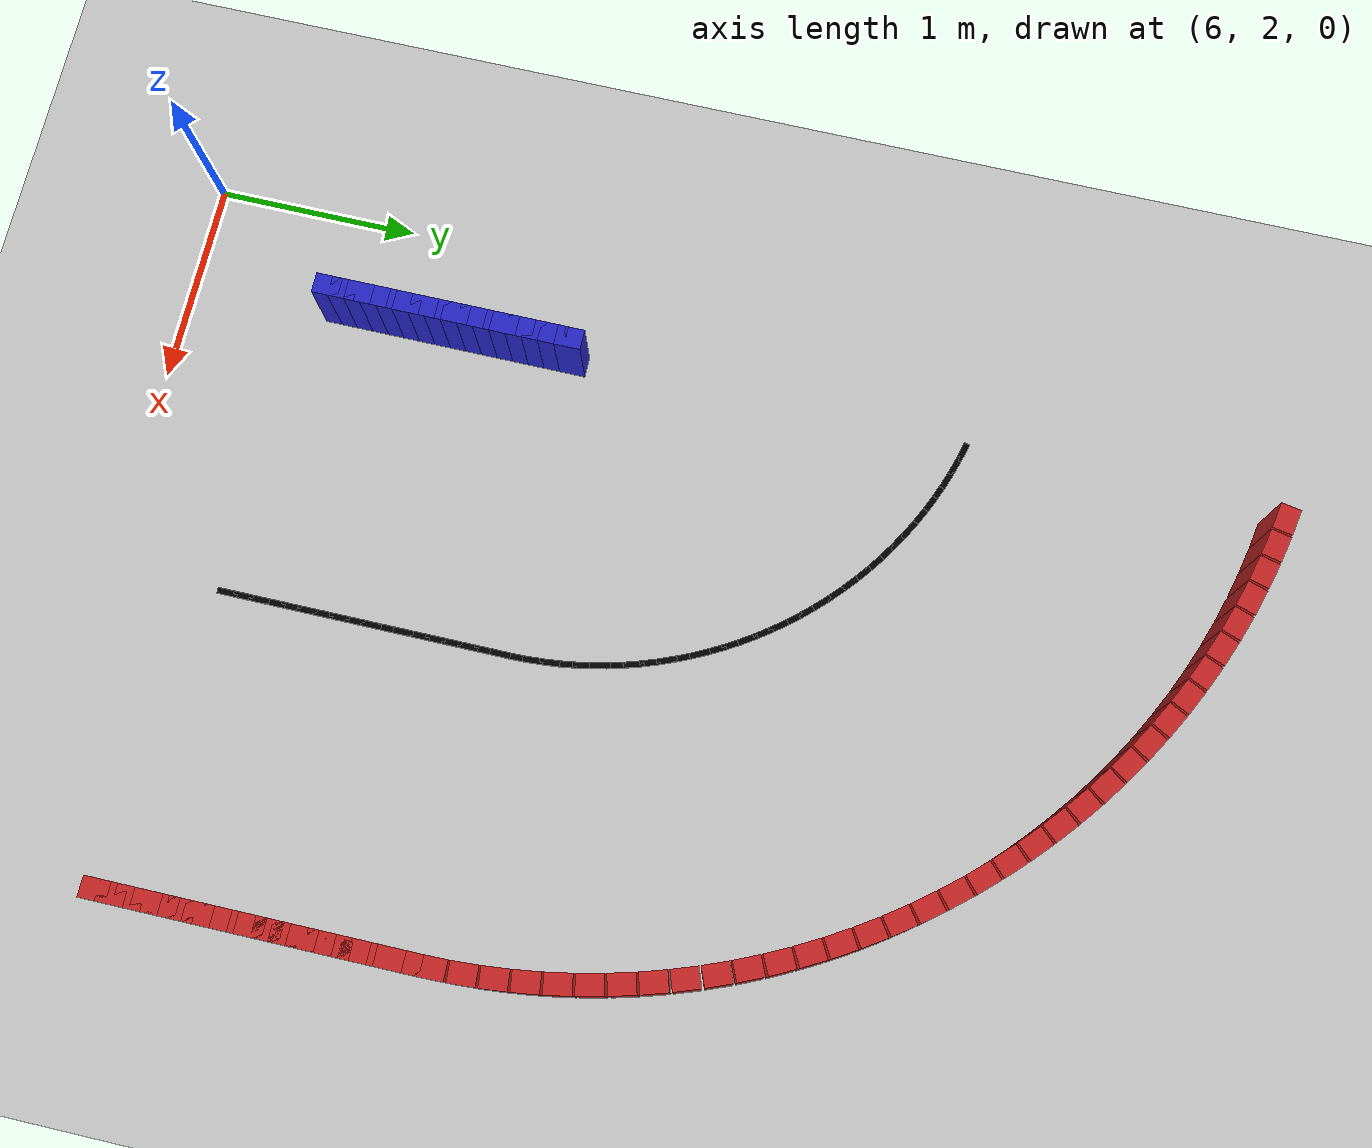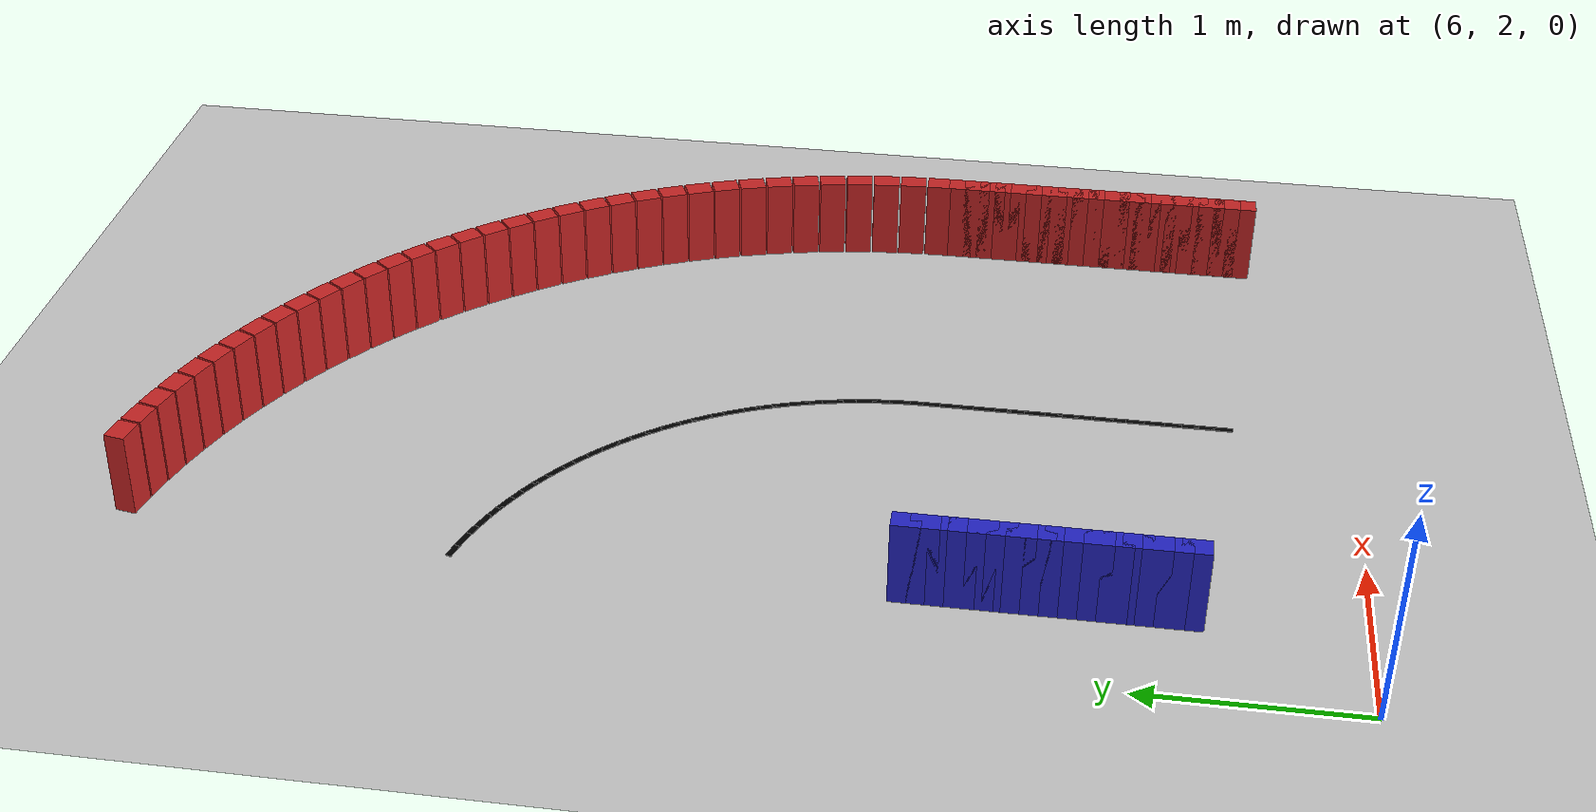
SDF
<sdf version="1.6">
 <world name="new_race_track">
  <include><uri>model://ground_plane</uri></include>
  <include><uri>model://sun</uri></include>
  <model name="iw_480">
   <static>true</static>
   <pose>6.5000 2.7600 0.200 0 0 1.5708</pose>
   <link name="l">
    <collision name="c"><geometry><box><size>0.1300 0.1 0.4</size></box></geometry></collision>
    <visual name="v">
     <geometry><box><size>0.1300 0.1 0.4</size></box></geometry>
     <material><ambient>0.15 0.15 0.8 1</ambient><diffuse>0.15 0.15 0.8 1</diffuse></material>
    </visual>
   </link>
  </model>
  <model name="iw_481">
   <static>true</static>
   <pose>6.5000 2.8400 0.200 0 0 1.5708</pose>
   <link name="l">
    <collision name="c"><geometry><box><size>0.1300 0.1 0.4</size></box></geometry></collision>
    <visual name="v">
     <geometry><box><size>0.1300 0.1 0.4</size></box></geometry>
     <material><ambient>0.15 0.15 0.8 1</ambient><diffuse>0.15 0.15 0.8 1</diffuse></material>
    </visual>
   </link>
  </model>
  <model name="iw_482">
   <static>true</static>
   <pose>6.5000 2.9200 0.200 0 0 1.5708</pose>
   <link name="l">
    <collision name="c"><geometry><box><size>0.1300 0.1 0.4</size></box></geometry></collision>
    <visual name="v">
     <geometry><box><size>0.1300 0.1 0.4</size></box></geometry>
     <material><ambient>0.15 0.15 0.8 1</ambient><diffuse>0.15 0.15 0.8 1</diffuse></material>
    </visual>
   </link>
  </model>
  <model name="iw_483">
   <static>true</static>
   <pose>6.5000 3.0000 0.200 0 0 1.5708</pose>
   <link name="l">
    <collision name="c"><geometry><box><size>0.1300 0.1 0.4</size></box></geometry></collision>
    <visual name="v">
     <geometry><box><size>0.1300 0.1 0.4</size></box></geometry>
     <material><ambient>0.15 0.15 0.8 1</ambient><diffuse>0.15 0.15 0.8 1</diffuse></material>
    </visual>
   </link>
  </model>
  <model name="iw_484">
   <static>true</static>
   <pose>6.5000 3.0800 0.200 0 0 1.5708</pose>
   <link name="l">
    <collision name="c"><geometry><box><size>0.1300 0.1 0.4</size></box></geometry></collision>
    <visual name="v">
     <geometry><box><size>0.1300 0.1 0.4</size></box></geometry>
     <material><ambient>0.15 0.15 0.8 1</ambient><diffuse>0.15 0.15 0.8 1</diffuse></material>
    </visual>
   </link>
  </model>
  <model name="iw_485">
   <static>true</static>
   <pose>6.5000 3.1600 0.200 0 0 1.5708</pose>
   <link name="l">
    <collision name="c"><geometry><box><size>0.1300 0.1 0.4</size></box></geometry></collision>
    <visual name="v">
     <geometry><box><size>0.1300 0.1 0.4</size></box></geometry>
     <material><ambient>0.15 0.15 0.8 1</ambient><diffuse>0.15 0.15 0.8 1</diffuse></material>
    </visual>
   </link>
  </model>
  <model name="iw_486">
   <static>true</static>
   <pose>6.5000 3.2400 0.200 0 0 1.5708</pose>
   <link name="l">
    <collision name="c"><geometry><box><size>0.1300 0.1 0.4</size></box></geometry></collision>
    <visual name="v">
     <geometry><box><size>0.1300 0.1 0.4</size></box></geometry>
     <material><ambient>0.15 0.15 0.8 1</ambient><diffuse>0.15 0.15 0.8 1</diffuse></material>
    </visual>
   </link>
  </model>
  <model name="iw_487">
   <static>true</static>
   <pose>6.5000 3.3200 0.200 0 0 1.5708</pose>
   <link name="l">
    <collision name="c"><geometry><box><size>0.1300 0.1 0.4</size></box></geometry></collision>
    <visual name="v">
     <geometry><box><size>0.1300 0.1 0.4</size></box></geometry>
     <material><ambient>0.15 0.15 0.8 1</ambient><diffuse>0.15 0.15 0.8 1</diffuse></material>
    </visual>
   </link>
  </model>
  <model name="iw_488">
   <static>true</static>
   <pose>6.5000 3.4000 0.200 0 0 1.5708</pose>
   <link name="l">
    <collision name="c"><geometry><box><size>0.1300 0.1 0.4</size></box></geometry></collision>
    <visual name="v">
     <geometry><box><size>0.1300 0.1 0.4</size></box></geometry>
     <material><ambient>0.15 0.15 0.8 1</ambient><diffuse>0.15 0.15 0.8 1</diffuse></material>
    </visual>
   </link>
  </model>
  <model name="iw_489">
   <static>true</static>
   <pose>6.5000 3.4800 0.200 0 0 1.5708</pose>
   <link name="l">
    <collision name="c"><geometry><box><size>0.1300 0.1 0.4</size></box></geometry></collision>
    <visual name="v">
     <geometry><box><size>0.1300 0.1 0.4</size></box></geometry>
     <material><ambient>0.15 0.15 0.8 1</ambient><diffuse>0.15 0.15 0.8 1</diffuse></material>
    </visual>
   </link>
  </model>
  <model name="iw_490">
   <static>true</static>
   <pose>6.5000 3.5600 0.200 0 0 1.5708</pose>
   <link name="l">
    <collision name="c"><geometry><box><size>0.1300 0.1 0.4</size></box></geometry></collision>
    <visual name="v">
     <geometry><box><size>0.1300 0.1 0.4</size></box></geometry>
     <material><ambient>0.15 0.15 0.8 1</ambient><diffuse>0.15 0.15 0.8 1</diffuse></material>
    </visual>
   </link>
  </model>
  <model name="iw_491">
   <static>true</static>
   <pose>6.5000 3.6400 0.200 0 0 1.5708</pose>
   <link name="l">
    <collision name="c"><geometry><box><size>0.1300 0.1 0.4</size></box></geometry></collision>
    <visual name="v">
     <geometry><box><size>0.1300 0.1 0.4</size></box></geometry>
     <material><ambient>0.15 0.15 0.8 1</ambient><diffuse>0.15 0.15 0.8 1</diffuse></material>
    </visual>
   </link>
  </model>
  <model name="iw_492">
   <static>true</static>
   <pose>6.5000 3.7200 0.200 0 0 1.5708</pose>
   <link name="l">
    <collision name="c"><geometry><box><size>0.1300 0.1 0.4</size></box></geometry></collision>
    <visual name="v">
     <geometry><box><size>0.1300 0.1 0.4</size></box></geometry>
     <material><ambient>0.15 0.15 0.8 1</ambient><diffuse>0.15 0.15 0.8 1</diffuse></material>
    </visual>
   </link>
  </model>
  <model name="iw_493">
   <static>true</static>
   <pose>6.5000 3.8000 0.200 0 0 1.5708</pose>
   <link name="l">
    <collision name="c"><geometry><box><size>0.1300 0.1 0.4</size></box></geometry></collision>
    <visual name="v">
     <geometry><box><size>0.1300 0.1 0.4</size></box></geometry>
     <material><ambient>0.15 0.15 0.8 1</ambient><diffuse>0.15 0.15 0.8 1</diffuse></material>
    </visual>
   </link>
  </model>
  <model name="iw_494">
   <static>true</static>
   <pose>6.5000 3.8800 0.200 0 0 1.5708</pose>
   <link name="l">
    <collision name="c"><geometry><box><size>0.1300 0.1 0.4</size></box></geometry></collision>
    <visual name="v">
     <geometry><box><size>0.1300 0.1 0.4</size></box></geometry>
     <material><ambient>0.15 0.15 0.8 1</ambient><diffuse>0.15 0.15 0.8 1</diffuse></material>
    </visual>
   </link>
  </model>
  <model name="iw_495">
   <static>true</static>
   <pose>6.5000 3.9600 0.200 0 0 1.5708</pose>
   <link name="l">
    <collision name="c"><geometry><box><size>0.1300 0.1 0.4</size></box></geometry></collision>
    <visual name="v">
     <geometry><box><size>0.1300 0.1 0.4</size></box></geometry>
     <material><ambient>0.15 0.15 0.8 1</ambient><diffuse>0.15 0.15 0.8 1</diffuse></material>
    </visual>
   </link>
  </model>
  <model name="ow_477">
   <static>true</static>
   <pose>9.5000 2.5200 0.200 0 0 1.5708</pose>
   <link name="l">
    <collision name="c"><geometry><box><size>0.1300 0.1 0.4</size></box></geometry></collision>
    <visual name="v">
     <geometry><box><size>0.1300 0.1 0.4</size></box></geometry>
     <material><ambient>0.8 0.15 0.15 1</ambient><diffuse>0.8 0.15 0.15 1</diffuse></material>
    </visual>
   </link>
  </model>
  <model name="ow_478">
   <static>true</static>
   <pose>9.5000 2.6000 0.200 0 0 1.5708</pose>
   <link name="l">
    <collision name="c"><geometry><box><size>0.1300 0.1 0.4</size></box></geometry></collision>
    <visual name="v">
     <geometry><box><size>0.1300 0.1 0.4</size></box></geometry>
     <material><ambient>0.8 0.15 0.15 1</ambient><diffuse>0.8 0.15 0.15 1</diffuse></material>
    </visual>
   </link>
  </model>
  <model name="ow_479">
   <static>true</static>
   <pose>9.5000 2.6800 0.200 0 0 1.5708</pose>
   <link name="l">
    <collision name="c"><geometry><box><size>0.1300 0.1 0.4</size></box></geometry></collision>
    <visual name="v">
     <geometry><box><size>0.1300 0.1 0.4</size></box></geometry>
     <material><ambient>0.8 0.15 0.15 1</ambient><diffuse>0.8 0.15 0.15 1</diffuse></material>
    </visual>
   </link>
  </model>
  <model name="ow_480">
   <static>true</static>
   <pose>9.5000 2.7600 0.200 0 0 1.5708</pose>
   <link name="l">
    <collision name="c"><geometry><box><size>0.1300 0.1 0.4</size></box></geometry></collision>
    <visual name="v">
     <geometry><box><size>0.1300 0.1 0.4</size></box></geometry>
     <material><ambient>0.8 0.15 0.15 1</ambient><diffuse>0.8 0.15 0.15 1</diffuse></material>
    </visual>
   </link>
  </model>
  <model name="ow_481">
   <static>true</static>
   <pose>9.5000 2.8400 0.200 0 0 1.5708</pose>
   <link name="l">
    <collision name="c"><geometry><box><size>0.1300 0.1 0.4</size></box></geometry></collision>
    <visual name="v">
     <geometry><box><size>0.1300 0.1 0.4</size></box></geometry>
     <material><ambient>0.8 0.15 0.15 1</ambient><diffuse>0.8 0.15 0.15 1</diffuse></material>
    </visual>
   </link>
  </model>
  <model name="ow_482">
   <static>true</static>
   <pose>9.5000 2.9200 0.200 0 0 1.5708</pose>
   <link name="l">
    <collision name="c"><geometry><box><size>0.1300 0.1 0.4</size></box></geometry></collision>
    <visual name="v">
     <geometry><box><size>0.1300 0.1 0.4</size></box></geometry>
     <material><ambient>0.8 0.15 0.15 1</ambient><diffuse>0.8 0.15 0.15 1</diffuse></material>
    </visual>
   </link>
  </model>
  <model name="ow_483">
   <static>true</static>
   <pose>9.5000 3.0000 0.200 0 0 1.5708</pose>
   <link name="l">
    <collision name="c"><geometry><box><size>0.1300 0.1 0.4</size></box></geometry></collision>
    <visual name="v">
     <geometry><box><size>0.1300 0.1 0.4</size></box></geometry>
     <material><ambient>0.8 0.15 0.15 1</ambient><diffuse>0.8 0.15 0.15 1</diffuse></material>
    </visual>
   </link>
  </model>
  <model name="ow_484">
   <static>true</static>
   <pose>9.5000 3.0800 0.200 0 0 1.5708</pose>
   <link name="l">
    <collision name="c"><geometry><box><size>0.1300 0.1 0.4</size></box></geometry></collision>
    <visual name="v">
     <geometry><box><size>0.1300 0.1 0.4</size></box></geometry>
     <material><ambient>0.8 0.15 0.15 1</ambient><diffuse>0.8 0.15 0.15 1</diffuse></material>
    </visual>
   </link>
  </model>
  <model name="ow_485">
   <static>true</static>
   <pose>9.5000 3.1600 0.200 0 0 1.5708</pose>
   <link name="l">
    <collision name="c"><geometry><box><size>0.1300 0.1 0.4</size></box></geometry></collision>
    <visual name="v">
     <geometry><box><size>0.1300 0.1 0.4</size></box></geometry>
     <material><ambient>0.8 0.15 0.15 1</ambient><diffuse>0.8 0.15 0.15 1</diffuse></material>
    </visual>
   </link>
  </model>
  <model name="ow_486">
   <static>true</static>
   <pose>9.5000 3.2400 0.200 0 0 1.5708</pose>
   <link name="l">
    <collision name="c"><geometry><box><size>0.1300 0.1 0.4</size></box></geometry></collision>
    <visual name="v">
     <geometry><box><size>0.1300 0.1 0.4</size></box></geometry>
     <material><ambient>0.8 0.15 0.15 1</ambient><diffuse>0.8 0.15 0.15 1</diffuse></material>
    </visual>
   </link>
  </model>
  <model name="ow_487">
   <static>true</static>
   <pose>9.5000 3.3200 0.200 0 0 1.5708</pose>
   <link name="l">
    <collision name="c"><geometry><box><size>0.1300 0.1 0.4</size></box></geometry></collision>
    <visual name="v">
     <geometry><box><size>0.1300 0.1 0.4</size></box></geometry>
     <material><ambient>0.8 0.15 0.15 1</ambient><diffuse>0.8 0.15 0.15 1</diffuse></material>
    </visual>
   </link>
  </model>
  <model name="ow_488">
   <static>true</static>
   <pose>9.5000 3.4000 0.200 0 0 1.5708</pose>
   <link name="l">
    <collision name="c"><geometry><box><size>0.1300 0.1 0.4</size></box></geometry></collision>
    <visual name="v">
     <geometry><box><size>0.1300 0.1 0.4</size></box></geometry>
     <material><ambient>0.8 0.15 0.15 1</ambient><diffuse>0.8 0.15 0.15 1</diffuse></material>
    </visual>
   </link>
  </model>
  <model name="ow_489">
   <static>true</static>
   <pose>9.5000 3.4800 0.200 0 0 1.5708</pose>
   <link name="l">
    <collision name="c"><geometry><box><size>0.1300 0.1 0.4</size></box></geometry></collision>
    <visual name="v">
     <geometry><box><size>0.1300 0.1 0.4</size></box></geometry>
     <material><ambient>0.8 0.15 0.15 1</ambient><diffuse>0.8 0.15 0.15 1</diffuse></material>
    </visual>
   </link>
  </model>
  <model name="ow_490">
   <static>true</static>
   <pose>9.5000 3.5600 0.200 0 0 1.5708</pose>
   <link name="l">
    <collision name="c"><geometry><box><size>0.1300 0.1 0.4</size></box></geometry></collision>
    <visual name="v">
     <geometry><box><size>0.1300 0.1 0.4</size></box></geometry>
     <material><ambient>0.8 0.15 0.15 1</ambient><diffuse>0.8 0.15 0.15 1</diffuse></material>
    </visual>
   </link>
  </model>
  <model name="ow_491">
   <static>true</static>
   <pose>9.5000 3.6400 0.200 0 0 1.5708</pose>
   <link name="l">
    <collision name="c"><geometry><box><size>0.1300 0.1 0.4</size></box></geometry></collision>
    <visual name="v">
     <geometry><box><size>0.1300 0.1 0.4</size></box></geometry>
     <material><ambient>0.8 0.15 0.15 1</ambient><diffuse>0.8 0.15 0.15 1</diffuse></material>
    </visual>
   </link>
  </model>
  <model name="ow_492">
   <static>true</static>
   <pose>9.5000 3.7200 0.200 0 0 1.5708</pose>
   <link name="l">
    <collision name="c"><geometry><box><size>0.1300 0.1 0.4</size></box></geometry></collision>
    <visual name="v">
     <geometry><box><size>0.1300 0.1 0.4</size></box></geometry>
     <material><ambient>0.8 0.15 0.15 1</ambient><diffuse>0.8 0.15 0.15 1</diffuse></material>
    </visual>
   </link>
  </model>
  <model name="ow_493">
   <static>true</static>
   <pose>9.5000 3.8000 0.200 0 0 1.5708</pose>
   <link name="l">
    <collision name="c"><geometry><box><size>0.1300 0.1 0.4</size></box></geometry></collision>
    <visual name="v">
     <geometry><box><size>0.1300 0.1 0.4</size></box></geometry>
     <material><ambient>0.8 0.15 0.15 1</ambient><diffuse>0.8 0.15 0.15 1</diffuse></material>
    </visual>
   </link>
  </model>
  <model name="ow_494">
   <static>true</static>
   <pose>9.5000 3.8800 0.200 0 0 1.5708</pose>
   <link name="l">
    <collision name="c"><geometry><box><size>0.1300 0.1 0.4</size></box></geometry></collision>
    <visual name="v">
     <geometry><box><size>0.1300 0.1 0.4</size></box></geometry>
     <material><ambient>0.8 0.15 0.15 1</ambient><diffuse>0.8 0.15 0.15 1</diffuse></material>
    </visual>
   </link>
  </model>
  <model name="ow_495">
   <static>true</static>
   <pose>9.5000 3.9600 0.200 0 0 1.5708</pose>
   <link name="l">
    <collision name="c"><geometry><box><size>0.1300 0.1 0.4</size></box></geometry></collision>
    <visual name="v">
     <geometry><box><size>0.1300 0.1 0.4</size></box></geometry>
     <material><ambient>0.8 0.15 0.15 1</ambient><diffuse>0.8 0.15 0.15 1</diffuse></material>
    </visual>
   </link>
  </model>
  <model name="ow_496">
   <static>true</static>
   <pose>9.4989 4.0705 0.200 0 0 1.5909</pose>
   <link name="l">
    <collision name="c"><geometry><box><size>0.1305 0.1 0.4</size></box></geometry></collision>
    <visual name="v">
     <geometry><box><size>0.1305 0.1 0.4</size></box></geometry>
     <material><ambient>0.8 0.15 0.15 1</ambient><diffuse>0.8 0.15 0.15 1</diffuse></material>
    </visual>
   </link>
  </model>
  <model name="ow_497">
   <static>true</static>
   <pose>9.4932 4.2113 0.200 0 0 1.6312</pose>
   <link name="l">
    <collision name="c"><geometry><box><size>0.1305 0.1 0.4</size></box></geometry></collision>
    <visual name="v">
     <geometry><box><size>0.1305 0.1 0.4</size></box></geometry>
     <material><ambient>0.8 0.15 0.15 1</ambient><diffuse>0.8 0.15 0.15 1</diffuse></material>
    </visual>
   </link>
  </model>
  <model name="ow_498">
   <static>true</static>
   <pose>9.4819 4.3518 0.200 0 0 1.6715</pose>
   <link name="l">
    <collision name="c"><geometry><box><size>0.1305 0.1 0.4</size></box></geometry></collision>
    <visual name="v">
     <geometry><box><size>0.1305 0.1 0.4</size></box></geometry>
     <material><ambient>0.8 0.15 0.15 1</ambient><diffuse>0.8 0.15 0.15 1</diffuse></material>
    </visual>
   </link>
  </model>
  <model name="ow_499">
   <static>true</static>
   <pose>9.4649 4.4917 0.200 0 0 1.7118</pose>
   <link name="l">
    <collision name="c"><geometry><box><size>0.1305 0.1 0.4</size></box></geometry></collision>
    <visual name="v">
     <geometry><box><size>0.1305 0.1 0.4</size></box></geometry>
     <material><ambient>0.8 0.15 0.15 1</ambient><diffuse>0.8 0.15 0.15 1</diffuse></material>
    </visual>
   </link>
  </model>
  <model name="ow_500">
   <static>true</static>
   <pose>9.4423 4.6308 0.200 0 0 1.7520</pose>
   <link name="l">
    <collision name="c"><geometry><box><size>0.1305 0.1 0.4</size></box></geometry></collision>
    <visual name="v">
     <geometry><box><size>0.1305 0.1 0.4</size></box></geometry>
     <material><ambient>0.8 0.15 0.15 1</ambient><diffuse>0.8 0.15 0.15 1</diffuse></material>
    </visual>
   </link>
  </model>
  <model name="ow_501">
   <static>true</static>
   <pose>9.4141 4.7689 0.200 0 0 1.7923</pose>
   <link name="l">
    <collision name="c"><geometry><box><size>0.1305 0.1 0.4</size></box></geometry></collision>
    <visual name="v">
     <geometry><box><size>0.1305 0.1 0.4</size></box></geometry>
     <material><ambient>0.8 0.15 0.15 1</ambient><diffuse>0.8 0.15 0.15 1</diffuse></material>
    </visual>
   </link>
  </model>
  <model name="ow_502">
   <static>true</static>
   <pose>9.3803 4.9058 0.200 0 0 1.8326</pose>
   <link name="l">
    <collision name="c"><geometry><box><size>0.1305 0.1 0.4</size></box></geometry></collision>
    <visual name="v">
     <geometry><box><size>0.1305 0.1 0.4</size></box></geometry>
     <material><ambient>0.8 0.15 0.15 1</ambient><diffuse>0.8 0.15 0.15 1</diffuse></material>
    </visual>
   </link>
  </model>
  <model name="ow_503">
   <static>true</static>
   <pose>9.3411 5.0411 0.200 0 0 1.8729</pose>
   <link name="l">
    <collision name="c"><geometry><box><size>0.1305 0.1 0.4</size></box></geometry></collision>
    <visual name="v">
     <geometry><box><size>0.1305 0.1 0.4</size></box></geometry>
     <material><ambient>0.8 0.15 0.15 1</ambient><diffuse>0.8 0.15 0.15 1</diffuse></material>
    </visual>
   </link>
  </model>
  <model name="ow_504">
   <static>true</static>
   <pose>9.2965 5.1748 0.200 0 0 1.9131</pose>
   <link name="l">
    <collision name="c"><geometry><box><size>0.1305 0.1 0.4</size></box></geometry></collision>
    <visual name="v">
     <geometry><box><size>0.1305 0.1 0.4</size></box></geometry>
     <material><ambient>0.8 0.15 0.15 1</ambient><diffuse>0.8 0.15 0.15 1</diffuse></material>
    </visual>
   </link>
  </model>
  <model name="ow_505">
   <static>true</static>
   <pose>9.2465 5.3066 0.200 0 0 1.9534</pose>
   <link name="l">
    <collision name="c"><geometry><box><size>0.1305 0.1 0.4</size></box></geometry></collision>
    <visual name="v">
     <geometry><box><size>0.1305 0.1 0.4</size></box></geometry>
     <material><ambient>0.8 0.15 0.15 1</ambient><diffuse>0.8 0.15 0.15 1</diffuse></material>
    </visual>
   </link>
  </model>
  <model name="ow_506">
   <static>true</static>
   <pose>9.1913 5.4363 0.200 0 0 1.9937</pose>
   <link name="l">
    <collision name="c"><geometry><box><size>0.1305 0.1 0.4</size></box></geometry></collision>
    <visual name="v">
     <geometry><box><size>0.1305 0.1 0.4</size></box></geometry>
     <material><ambient>0.8 0.15 0.15 1</ambient><diffuse>0.8 0.15 0.15 1</diffuse></material>
    </visual>
   </link>
  </model>
  <model name="ow_507">
   <static>true</static>
   <pose>9.1309 5.5636 0.200 0 0 2.0340</pose>
   <link name="l">
    <collision name="c"><geometry><box><size>0.1305 0.1 0.4</size></box></geometry></collision>
    <visual name="v">
     <geometry><box><size>0.1305 0.1 0.4</size></box></geometry>
     <material><ambient>0.8 0.15 0.15 1</ambient><diffuse>0.8 0.15 0.15 1</diffuse></material>
    </visual>
   </link>
  </model>
  <model name="ow_508">
   <static>true</static>
   <pose>9.0654 5.6884 0.200 0 0 2.0743</pose>
   <link name="l">
    <collision name="c"><geometry><box><size>0.1305 0.1 0.4</size></box></geometry></collision>
    <visual name="v">
     <geometry><box><size>0.1305 0.1 0.4</size></box></geometry>
     <material><ambient>0.8 0.15 0.15 1</ambient><diffuse>0.8 0.15 0.15 1</diffuse></material>
    </visual>
   </link>
  </model>
  <model name="ow_509">
   <static>true</static>
   <pose>8.9949 5.8105 0.200 0 0 2.1145</pose>
   <link name="l">
    <collision name="c"><geometry><box><size>0.1305 0.1 0.4</size></box></geometry></collision>
    <visual name="v">
     <geometry><box><size>0.1305 0.1 0.4</size></box></geometry>
     <material><ambient>0.8 0.15 0.15 1</ambient><diffuse>0.8 0.15 0.15 1</diffuse></material>
    </visual>
   </link>
  </model>
  <model name="ow_510">
   <static>true</static>
   <pose>8.9196 5.9296 0.200 0 0 2.1548</pose>
   <link name="l">
    <collision name="c"><geometry><box><size>0.1305 0.1 0.4</size></box></geometry></collision>
    <visual name="v">
     <geometry><box><size>0.1305 0.1 0.4</size></box></geometry>
     <material><ambient>0.8 0.15 0.15 1</ambient><diffuse>0.8 0.15 0.15 1</diffuse></material>
    </visual>
   </link>
  </model>
  <model name="ow_511">
   <static>true</static>
   <pose>8.8395 6.0456 0.200 0 0 2.1951</pose>
   <link name="l">
    <collision name="c"><geometry><box><size>0.1305 0.1 0.4</size></box></geometry></collision>
    <visual name="v">
     <geometry><box><size>0.1305 0.1 0.4</size></box></geometry>
     <material><ambient>0.8 0.15 0.15 1</ambient><diffuse>0.8 0.15 0.15 1</diffuse></material>
    </visual>
   </link>
  </model>
  <model name="ow_512">
   <static>true</static>
   <pose>8.7548 6.1583 0.200 0 0 2.2354</pose>
   <link name="l">
    <collision name="c"><geometry><box><size>0.1305 0.1 0.4</size></box></geometry></collision>
    <visual name="v">
     <geometry><box><size>0.1305 0.1 0.4</size></box></geometry>
     <material><ambient>0.8 0.15 0.15 1</ambient><diffuse>0.8 0.15 0.15 1</diffuse></material>
    </visual>
   </link>
  </model>
  <model name="ow_513">
   <static>true</static>
   <pose>8.6657 6.2674 0.200 0 0 2.2756</pose>
   <link name="l">
    <collision name="c"><geometry><box><size>0.1305 0.1 0.4</size></box></geometry></collision>
    <visual name="v">
     <geometry><box><size>0.1305 0.1 0.4</size></box></geometry>
     <material><ambient>0.8 0.15 0.15 1</ambient><diffuse>0.8 0.15 0.15 1</diffuse></material>
    </visual>
   </link>
  </model>
  <model name="ow_514">
   <static>true</static>
   <pose>8.5722 6.3729 0.200 0 0 2.3159</pose>
   <link name="l">
    <collision name="c"><geometry><box><size>0.1305 0.1 0.4</size></box></geometry></collision>
    <visual name="v">
     <geometry><box><size>0.1305 0.1 0.4</size></box></geometry>
     <material><ambient>0.8 0.15 0.15 1</ambient><diffuse>0.8 0.15 0.15 1</diffuse></material>
    </visual>
   </link>
  </model>
  <model name="ow_515">
   <static>true</static>
   <pose>8.4746 6.4746 0.200 0 0 2.3562</pose>
   <link name="l">
    <collision name="c"><geometry><box><size>0.1305 0.1 0.4</size></box></geometry></collision>
    <visual name="v">
     <geometry><box><size>0.1305 0.1 0.4</size></box></geometry>
     <material><ambient>0.8 0.15 0.15 1</ambient><diffuse>0.8 0.15 0.15 1</diffuse></material>
    </visual>
   </link>
  </model>
  <model name="ow_516">
   <static>true</static>
   <pose>8.3729 6.5722 0.200 0 0 2.3965</pose>
   <link name="l">
    <collision name="c"><geometry><box><size>0.1305 0.1 0.4</size></box></geometry></collision>
    <visual name="v">
     <geometry><box><size>0.1305 0.1 0.4</size></box></geometry>
     <material><ambient>0.8 0.15 0.15 1</ambient><diffuse>0.8 0.15 0.15 1</diffuse></material>
    </visual>
   </link>
  </model>
  <model name="ow_517">
   <static>true</static>
   <pose>8.2674 6.6657 0.200 0 0 2.4367</pose>
   <link name="l">
    <collision name="c"><geometry><box><size>0.1305 0.1 0.4</size></box></geometry></collision>
    <visual name="v">
     <geometry><box><size>0.1305 0.1 0.4</size></box></geometry>
     <material><ambient>0.8 0.15 0.15 1</ambient><diffuse>0.8 0.15 0.15 1</diffuse></material>
    </visual>
   </link>
  </model>
  <model name="ow_518">
   <static>true</static>
   <pose>8.1583 6.7548 0.200 0 0 2.4770</pose>
   <link name="l">
    <collision name="c"><geometry><box><size>0.1305 0.1 0.4</size></box></geometry></collision>
    <visual name="v">
     <geometry><box><size>0.1305 0.1 0.4</size></box></geometry>
     <material><ambient>0.8 0.15 0.15 1</ambient><diffuse>0.8 0.15 0.15 1</diffuse></material>
    </visual>
   </link>
  </model>
  <model name="ow_519">
   <static>true</static>
   <pose>8.0456 6.8395 0.200 0 0 2.5173</pose>
   <link name="l">
    <collision name="c"><geometry><box><size>0.1305 0.1 0.4</size></box></geometry></collision>
    <visual name="v">
     <geometry><box><size>0.1305 0.1 0.4</size></box></geometry>
     <material><ambient>0.8 0.15 0.15 1</ambient><diffuse>0.8 0.15 0.15 1</diffuse></material>
    </visual>
   </link>
  </model>
  <model name="ow_520">
   <static>true</static>
   <pose>7.9296 6.9196 0.200 0 0 2.5576</pose>
   <link name="l">
    <collision name="c"><geometry><box><size>0.1305 0.1 0.4</size></box></geometry></collision>
    <visual name="v">
     <geometry><box><size>0.1305 0.1 0.4</size></box></geometry>
     <material><ambient>0.8 0.15 0.15 1</ambient><diffuse>0.8 0.15 0.15 1</diffuse></material>
    </visual>
   </link>
  </model>
  <model name="ow_521">
   <static>true</static>
   <pose>7.8105 6.9949 0.200 0 0 2.5979</pose>
   <link name="l">
    <collision name="c"><geometry><box><size>0.1305 0.1 0.4</size></box></geometry></collision>
    <visual name="v">
     <geometry><box><size>0.1305 0.1 0.4</size></box></geometry>
     <material><ambient>0.8 0.15 0.15 1</ambient><diffuse>0.8 0.15 0.15 1</diffuse></material>
    </visual>
   </link>
  </model>
  <model name="ow_522">
   <static>true</static>
   <pose>7.6884 7.0654 0.200 0 0 2.6381</pose>
   <link name="l">
    <collision name="c"><geometry><box><size>0.1305 0.1 0.4</size></box></geometry></collision>
    <visual name="v">
     <geometry><box><size>0.1305 0.1 0.4</size></box></geometry>
     <material><ambient>0.8 0.15 0.15 1</ambient><diffuse>0.8 0.15 0.15 1</diffuse></material>
    </visual>
   </link>
  </model>
  <model name="ow_523">
   <static>true</static>
   <pose>7.5636 7.1309 0.200 0 0 2.6784</pose>
   <link name="l">
    <collision name="c"><geometry><box><size>0.1305 0.1 0.4</size></box></geometry></collision>
    <visual name="v">
     <geometry><box><size>0.1305 0.1 0.4</size></box></geometry>
     <material><ambient>0.8 0.15 0.15 1</ambient><diffuse>0.8 0.15 0.15 1</diffuse></material>
    </visual>
   </link>
  </model>
  <model name="ow_524">
   <static>true</static>
   <pose>7.4363 7.1913 0.200 0 0 2.7187</pose>
   <link name="l">
    <collision name="c"><geometry><box><size>0.1305 0.1 0.4</size></box></geometry></collision>
    <visual name="v">
     <geometry><box><size>0.1305 0.1 0.4</size></box></geometry>
     <material><ambient>0.8 0.15 0.15 1</ambient><diffuse>0.8 0.15 0.15 1</diffuse></material>
    </visual>
   </link>
  </model>
  <model name="ow_525">
   <static>true</static>
   <pose>7.3066 7.2465 0.200 0 0 2.7590</pose>
   <link name="l">
    <collision name="c"><geometry><box><size>0.1305 0.1 0.4</size></box></geometry></collision>
    <visual name="v">
     <geometry><box><size>0.1305 0.1 0.4</size></box></geometry>
     <material><ambient>0.8 0.15 0.15 1</ambient><diffuse>0.8 0.15 0.15 1</diffuse></material>
    </visual>
   </link>
  </model>
  <model name="ow_526">
   <static>true</static>
   <pose>7.1748 7.2965 0.200 0 0 2.7992</pose>
   <link name="l">
    <collision name="c"><geometry><box><size>0.1305 0.1 0.4</size></box></geometry></collision>
    <visual name="v">
     <geometry><box><size>0.1305 0.1 0.4</size></box></geometry>
     <material><ambient>0.8 0.15 0.15 1</ambient><diffuse>0.8 0.15 0.15 1</diffuse></material>
    </visual>
   </link>
  </model>
  <model name="ow_527">
   <static>true</static>
   <pose>7.0411 7.3411 0.200 0 0 2.8395</pose>
   <link name="l">
    <collision name="c"><geometry><box><size>0.1305 0.1 0.4</size></box></geometry></collision>
    <visual name="v">
     <geometry><box><size>0.1305 0.1 0.4</size></box></geometry>
     <material><ambient>0.8 0.15 0.15 1</ambient><diffuse>0.8 0.15 0.15 1</diffuse></material>
    </visual>
   </link>
  </model>
  <model name="ow_528">
   <static>true</static>
   <pose>6.9058 7.3803 0.200 0 0 2.8798</pose>
   <link name="l">
    <collision name="c"><geometry><box><size>0.1305 0.1 0.4</size></box></geometry></collision>
    <visual name="v">
     <geometry><box><size>0.1305 0.1 0.4</size></box></geometry>
     <material><ambient>0.8 0.15 0.15 1</ambient><diffuse>0.8 0.15 0.15 1</diffuse></material>
    </visual>
   </link>
  </model>
  <model name="ow_529">
   <static>true</static>
   <pose>6.7689 7.4141 0.200 0 0 2.9201</pose>
   <link name="l">
    <collision name="c"><geometry><box><size>0.1305 0.1 0.4</size></box></geometry></collision>
    <visual name="v">
     <geometry><box><size>0.1305 0.1 0.4</size></box></geometry>
     <material><ambient>0.8 0.15 0.15 1</ambient><diffuse>0.8 0.15 0.15 1</diffuse></material>
    </visual>
   </link>
  </model>
  <model name="ow_530">
   <static>true</static>
   <pose>6.6308 7.4423 0.200 0 0 2.9603</pose>
   <link name="l">
    <collision name="c"><geometry><box><size>0.1305 0.1 0.4</size></box></geometry></collision>
    <visual name="v">
     <geometry><box><size>0.1305 0.1 0.4</size></box></geometry>
     <material><ambient>0.8 0.15 0.15 1</ambient><diffuse>0.8 0.15 0.15 1</diffuse></material>
    </visual>
   </link>
  </model>
  <model name="line_478">
   <static>true</static>
   <pose>8.0000 2.6000 0.002 0 0 1.5708</pose>
   <link name="l">
    <visual name="v">
     <geometry><box><size>0.1000 0.03 0.002</size></box></geometry>
     <material><ambient>0 0 0 1</ambient><diffuse>0 0 0 1</diffuse></material>
    </visual>
   </link>
  </model>
  <model name="line_479">
   <static>true</static>
   <pose>8.0000 2.6800 0.002 0 0 1.5708</pose>
   <link name="l">
    <visual name="v">
     <geometry><box><size>0.1000 0.03 0.002</size></box></geometry>
     <material><ambient>0 0 0 1</ambient><diffuse>0 0 0 1</diffuse></material>
    </visual>
   </link>
  </model>
  <model name="line_480">
   <static>true</static>
   <pose>8.0000 2.7600 0.002 0 0 1.5708</pose>
   <link name="l">
    <visual name="v">
     <geometry><box><size>0.1000 0.03 0.002</size></box></geometry>
     <material><ambient>0 0 0 1</ambient><diffuse>0 0 0 1</diffuse></material>
    </visual>
   </link>
  </model>
  <model name="line_481">
   <static>true</static>
   <pose>8.0000 2.8400 0.002 0 0 1.5708</pose>
   <link name="l">
    <visual name="v">
     <geometry><box><size>0.1000 0.03 0.002</size></box></geometry>
     <material><ambient>0 0 0 1</ambient><diffuse>0 0 0 1</diffuse></material>
    </visual>
   </link>
  </model>
  <model name="line_482">
   <static>true</static>
   <pose>8.0000 2.9200 0.002 0 0 1.5708</pose>
   <link name="l">
    <visual name="v">
     <geometry><box><size>0.1000 0.03 0.002</size></box></geometry>
     <material><ambient>0 0 0 1</ambient><diffuse>0 0 0 1</diffuse></material>
    </visual>
   </link>
  </model>
  <model name="line_483">
   <static>true</static>
   <pose>8.0000 3.0000 0.002 0 0 1.5708</pose>
   <link name="l">
    <visual name="v">
     <geometry><box><size>0.1000 0.03 0.002</size></box></geometry>
     <material><ambient>0 0 0 1</ambient><diffuse>0 0 0 1</diffuse></material>
    </visual>
   </link>
  </model>
  <model name="line_484">
   <static>true</static>
   <pose>8.0000 3.0800 0.002 0 0 1.5708</pose>
   <link name="l">
    <visual name="v">
     <geometry><box><size>0.1000 0.03 0.002</size></box></geometry>
     <material><ambient>0 0 0 1</ambient><diffuse>0 0 0 1</diffuse></material>
    </visual>
   </link>
  </model>
  <model name="line_485">
   <static>true</static>
   <pose>8.0000 3.1600 0.002 0 0 1.5708</pose>
   <link name="l">
    <visual name="v">
     <geometry><box><size>0.1000 0.03 0.002</size></box></geometry>
     <material><ambient>0 0 0 1</ambient><diffuse>0 0 0 1</diffuse></material>
    </visual>
   </link>
  </model>
  <model name="line_486">
   <static>true</static>
   <pose>8.0000 3.2400 0.002 0 0 1.5708</pose>
   <link name="l">
    <visual name="v">
     <geometry><box><size>0.1000 0.03 0.002</size></box></geometry>
     <material><ambient>0 0 0 1</ambient><diffuse>0 0 0 1</diffuse></material>
    </visual>
   </link>
  </model>
  <model name="line_487">
   <static>true</static>
   <pose>8.0000 3.3200 0.002 0 0 1.5708</pose>
   <link name="l">
    <visual name="v">
     <geometry><box><size>0.1000 0.03 0.002</size></box></geometry>
     <material><ambient>0 0 0 1</ambient><diffuse>0 0 0 1</diffuse></material>
    </visual>
   </link>
  </model>
  <model name="line_488">
   <static>true</static>
   <pose>8.0000 3.4000 0.002 0 0 1.5708</pose>
   <link name="l">
    <visual name="v">
     <geometry><box><size>0.1000 0.03 0.002</size></box></geometry>
     <material><ambient>0 0 0 1</ambient><diffuse>0 0 0 1</diffuse></material>
    </visual>
   </link>
  </model>
  <model name="line_489">
   <static>true</static>
   <pose>8.0000 3.4800 0.002 0 0 1.5708</pose>
   <link name="l">
    <visual name="v">
     <geometry><box><size>0.1000 0.03 0.002</size></box></geometry>
     <material><ambient>0 0 0 1</ambient><diffuse>0 0 0 1</diffuse></material>
    </visual>
   </link>
  </model>
  <model name="line_490">
   <static>true</static>
   <pose>8.0000 3.5600 0.002 0 0 1.5708</pose>
   <link name="l">
    <visual name="v">
     <geometry><box><size>0.1000 0.03 0.002</size></box></geometry>
     <material><ambient>0 0 0 1</ambient><diffuse>0 0 0 1</diffuse></material>
    </visual>
   </link>
  </model>
  <model name="line_491">
   <static>true</static>
   <pose>8.0000 3.6400 0.002 0 0 1.5708</pose>
   <link name="l">
    <visual name="v">
     <geometry><box><size>0.1000 0.03 0.002</size></box></geometry>
     <material><ambient>0 0 0 1</ambient><diffuse>0 0 0 1</diffuse></material>
    </visual>
   </link>
  </model>
  <model name="line_492">
   <static>true</static>
   <pose>8.0000 3.7200 0.002 0 0 1.5708</pose>
   <link name="l">
    <visual name="v">
     <geometry><box><size>0.1000 0.03 0.002</size></box></geometry>
     <material><ambient>0 0 0 1</ambient><diffuse>0 0 0 1</diffuse></material>
    </visual>
   </link>
  </model>
  <model name="line_493">
   <static>true</static>
   <pose>8.0000 3.8000 0.002 0 0 1.5708</pose>
   <link name="l">
    <visual name="v">
     <geometry><box><size>0.1000 0.03 0.002</size></box></geometry>
     <material><ambient>0 0 0 1</ambient><diffuse>0 0 0 1</diffuse></material>
    </visual>
   </link>
  </model>
  <model name="line_494">
   <static>true</static>
   <pose>8.0000 3.8800 0.002 0 0 1.5708</pose>
   <link name="l">
    <visual name="v">
     <geometry><box><size>0.1000 0.03 0.002</size></box></geometry>
     <material><ambient>0 0 0 1</ambient><diffuse>0 0 0 1</diffuse></material>
    </visual>
   </link>
  </model>
  <model name="line_495">
   <static>true</static>
   <pose>8.0000 3.9600 0.002 0 0 1.5708</pose>
   <link name="l">
    <visual name="v">
     <geometry><box><size>0.1000 0.03 0.002</size></box></geometry>
     <material><ambient>0 0 0 1</ambient><diffuse>0 0 0 1</diffuse></material>
    </visual>
   </link>
  </model>
  <model name="line_496">
   <static>true</static>
   <pose>7.9992 4.0403 0.002 0 0 1.5909</pose>
   <link name="l">
    <visual name="v">
     <geometry><box><size>0.1005 0.03 0.002</size></box></geometry>
     <material><ambient>0 0 0 1</ambient><diffuse>0 0 0 1</diffuse></material>
    </visual>
   </link>
  </model>
  <model name="line_497">
   <static>true</static>
   <pose>7.9959 4.1207 0.002 0 0 1.6312</pose>
   <link name="l">
    <visual name="v">
     <geometry><box><size>0.1005 0.03 0.002</size></box></geometry>
     <material><ambient>0 0 0 1</ambient><diffuse>0 0 0 1</diffuse></material>
    </visual>
   </link>
  </model>
  <model name="line_498">
   <static>true</static>
   <pose>7.9895 4.2010 0.002 0 0 1.6715</pose>
   <link name="l">
    <visual name="v">
     <geometry><box><size>0.1005 0.03 0.002</size></box></geometry>
     <material><ambient>0 0 0 1</ambient><diffuse>0 0 0 1</diffuse></material>
    </visual>
   </link>
  </model>
  <model name="line_499">
   <static>true</static>
   <pose>7.9798 4.2809 0.002 0 0 1.7118</pose>
   <link name="l">
    <visual name="v">
     <geometry><box><size>0.1005 0.03 0.002</size></box></geometry>
     <material><ambient>0 0 0 1</ambient><diffuse>0 0 0 1</diffuse></material>
    </visual>
   </link>
  </model>
  <model name="line_500">
   <static>true</static>
   <pose>7.9668 4.3604 0.002 0 0 1.7520</pose>
   <link name="l">
    <visual name="v">
     <geometry><box><size>0.1005 0.03 0.002</size></box></geometry>
     <material><ambient>0 0 0 1</ambient><diffuse>0 0 0 1</diffuse></material>
    </visual>
   </link>
  </model>
  <model name="line_501">
   <static>true</static>
   <pose>7.9507 4.4393 0.002 0 0 1.7923</pose>
   <link name="l">
    <visual name="v">
     <geometry><box><size>0.1005 0.03 0.002</size></box></geometry>
     <material><ambient>0 0 0 1</ambient><diffuse>0 0 0 1</diffuse></material>
    </visual>
   </link>
  </model>
  <model name="line_502">
   <static>true</static>
   <pose>7.9315 4.5175 0.002 0 0 1.8326</pose>
   <link name="l">
    <visual name="v">
     <geometry><box><size>0.1005 0.03 0.002</size></box></geometry>
     <material><ambient>0 0 0 1</ambient><diffuse>0 0 0 1</diffuse></material>
    </visual>
   </link>
  </model>
  <model name="line_503">
   <static>true</static>
   <pose>7.9091 4.5949 0.002 0 0 1.8729</pose>
   <link name="l">
    <visual name="v">
     <geometry><box><size>0.1005 0.03 0.002</size></box></geometry>
     <material><ambient>0 0 0 1</ambient><diffuse>0 0 0 1</diffuse></material>
    </visual>
   </link>
  </model>
  <model name="line_504">
   <static>true</static>
   <pose>7.8836 4.6713 0.002 0 0 1.9131</pose>
   <link name="l">
    <visual name="v">
     <geometry><box><size>0.1005 0.03 0.002</size></box></geometry>
     <material><ambient>0 0 0 1</ambient><diffuse>0 0 0 1</diffuse></material>
    </visual>
   </link>
  </model>
  <model name="line_505">
   <static>true</static>
   <pose>7.8550 4.7466 0.002 0 0 1.9534</pose>
   <link name="l">
    <visual name="v">
     <geometry><box><size>0.1005 0.03 0.002</size></box></geometry>
     <material><ambient>0 0 0 1</ambient><diffuse>0 0 0 1</diffuse></material>
    </visual>
   </link>
  </model>
  <model name="line_506">
   <static>true</static>
   <pose>7.8234 4.8207 0.002 0 0 1.9937</pose>
   <link name="l">
    <visual name="v">
     <geometry><box><size>0.1005 0.03 0.002</size></box></geometry>
     <material><ambient>0 0 0 1</ambient><diffuse>0 0 0 1</diffuse></material>
    </visual>
   </link>
  </model>
  <model name="line_507">
   <static>true</static>
   <pose>7.7889 4.8934 0.002 0 0 2.0340</pose>
   <link name="l">
    <visual name="v">
     <geometry><box><size>0.1005 0.03 0.002</size></box></geometry>
     <material><ambient>0 0 0 1</ambient><diffuse>0 0 0 1</diffuse></material>
    </visual>
   </link>
  </model>
  <model name="line_508">
   <static>true</static>
   <pose>7.7515 4.9647 0.002 0 0 2.0743</pose>
   <link name="l">
    <visual name="v">
     <geometry><box><size>0.1005 0.03 0.002</size></box></geometry>
     <material><ambient>0 0 0 1</ambient><diffuse>0 0 0 1</diffuse></material>
    </visual>
   </link>
  </model>
  <model name="line_509">
   <static>true</static>
   <pose>7.7112 5.0345 0.002 0 0 2.1145</pose>
   <link name="l">
    <visual name="v">
     <geometry><box><size>0.1005 0.03 0.002</size></box></geometry>
     <material><ambient>0 0 0 1</ambient><diffuse>0 0 0 1</diffuse></material>
    </visual>
   </link>
  </model>
  <model name="line_510">
   <static>true</static>
   <pose>7.6682 5.1025 0.002 0 0 2.1548</pose>
   <link name="l">
    <visual name="v">
     <geometry><box><size>0.1005 0.03 0.002</size></box></geometry>
     <material><ambient>0 0 0 1</ambient><diffuse>0 0 0 1</diffuse></material>
    </visual>
   </link>
  </model>
  <model name="line_511">
   <static>true</static>
   <pose>7.6224 5.1688 0.002 0 0 2.1951</pose>
   <link name="l">
    <visual name="v">
     <geometry><box><size>0.1005 0.03 0.002</size></box></geometry>
     <material><ambient>0 0 0 1</ambient><diffuse>0 0 0 1</diffuse></material>
    </visual>
   </link>
  </model>
  <model name="line_512">
   <static>true</static>
   <pose>7.5740 5.2332 0.002 0 0 2.2354</pose>
   <link name="l">
    <visual name="v">
     <geometry><box><size>0.1005 0.03 0.002</size></box></geometry>
     <material><ambient>0 0 0 1</ambient><diffuse>0 0 0 1</diffuse></material>
    </visual>
   </link>
  </model>
  <model name="line_513">
   <static>true</static>
   <pose>7.5231 5.2956 0.002 0 0 2.2756</pose>
   <link name="l">
    <visual name="v">
     <geometry><box><size>0.1005 0.03 0.002</size></box></geometry>
     <material><ambient>0 0 0 1</ambient><diffuse>0 0 0 1</diffuse></material>
    </visual>
   </link>
  </model>
  <model name="line_514">
   <static>true</static>
   <pose>7.4697 5.3558 0.002 0 0 2.3159</pose>
   <link name="l">
    <visual name="v">
     <geometry><box><size>0.1005 0.03 0.002</size></box></geometry>
     <material><ambient>0 0 0 1</ambient><diffuse>0 0 0 1</diffuse></material>
    </visual>
   </link>
  </model>
  <model name="line_515">
   <static>true</static>
   <pose>7.4139 5.4139 0.002 0 0 2.3562</pose>
   <link name="l">
    <visual name="v">
     <geometry><box><size>0.1005 0.03 0.002</size></box></geometry>
     <material><ambient>0 0 0 1</ambient><diffuse>0 0 0 1</diffuse></material>
    </visual>
   </link>
  </model>
  <model name="line_516">
   <static>true</static>
   <pose>7.3558 5.4697 0.002 0 0 2.3965</pose>
   <link name="l">
    <visual name="v">
     <geometry><box><size>0.1005 0.03 0.002</size></box></geometry>
     <material><ambient>0 0 0 1</ambient><diffuse>0 0 0 1</diffuse></material>
    </visual>
   </link>
  </model>
  <model name="line_517">
   <static>true</static>
   <pose>7.2956 5.5231 0.002 0 0 2.4367</pose>
   <link name="l">
    <visual name="v">
     <geometry><box><size>0.1005 0.03 0.002</size></box></geometry>
     <material><ambient>0 0 0 1</ambient><diffuse>0 0 0 1</diffuse></material>
    </visual>
   </link>
  </model>
  <model name="line_518">
   <static>true</static>
   <pose>7.2332 5.5740 0.002 0 0 2.4770</pose>
   <link name="l">
    <visual name="v">
     <geometry><box><size>0.1005 0.03 0.002</size></box></geometry>
     <material><ambient>0 0 0 1</ambient><diffuse>0 0 0 1</diffuse></material>
    </visual>
   </link>
  </model>
  <model name="line_519">
   <static>true</static>
   <pose>7.1688 5.6224 0.002 0 0 2.5173</pose>
   <link name="l">
    <visual name="v">
     <geometry><box><size>0.1005 0.03 0.002</size></box></geometry>
     <material><ambient>0 0 0 1</ambient><diffuse>0 0 0 1</diffuse></material>
    </visual>
   </link>
  </model>
  <model name="line_520">
   <static>true</static>
   <pose>7.1025 5.6682 0.002 0 0 2.5576</pose>
   <link name="l">
    <visual name="v">
     <geometry><box><size>0.1005 0.03 0.002</size></box></geometry>
     <material><ambient>0 0 0 1</ambient><diffuse>0 0 0 1</diffuse></material>
    </visual>
   </link>
  </model>
  <model name="line_521">
   <static>true</static>
   <pose>7.0345 5.7112 0.002 0 0 2.5979</pose>
   <link name="l">
    <visual name="v">
     <geometry><box><size>0.1005 0.03 0.002</size></box></geometry>
     <material><ambient>0 0 0 1</ambient><diffuse>0 0 0 1</diffuse></material>
    </visual>
   </link>
  </model>
  <model name="line_522">
   <static>true</static>
   <pose>6.9647 5.7515 0.002 0 0 2.6381</pose>
   <link name="l">
    <visual name="v">
     <geometry><box><size>0.1005 0.03 0.002</size></box></geometry>
     <material><ambient>0 0 0 1</ambient><diffuse>0 0 0 1</diffuse></material>
    </visual>
   </link>
  </model>
  <model name="line_523">
   <static>true</static>
   <pose>6.8934 5.7889 0.002 0 0 2.6784</pose>
   <link name="l">
    <visual name="v">
     <geometry><box><size>0.1005 0.03 0.002</size></box></geometry>
     <material><ambient>0 0 0 1</ambient><diffuse>0 0 0 1</diffuse></material>
    </visual>
   </link>
  </model>
  <model name="line_524">
   <static>true</static>
   <pose>6.8207 5.8234 0.002 0 0 2.7187</pose>
   <link name="l">
    <visual name="v">
     <geometry><box><size>0.1005 0.03 0.002</size></box></geometry>
     <material><ambient>0 0 0 1</ambient><diffuse>0 0 0 1</diffuse></material>
    </visual>
   </link>
  </model>
  <model name="line_525">
   <static>true</static>
   <pose>6.7466 5.8550 0.002 0 0 2.7590</pose>
   <link name="l">
    <visual name="v">
     <geometry><box><size>0.1005 0.03 0.002</size></box></geometry>
     <material><ambient>0 0 0 1</ambient><diffuse>0 0 0 1</diffuse></material>
    </visual>
   </link>
  </model>
  <model name="line_526">
   <static>true</static>
   <pose>6.6713 5.8836 0.002 0 0 2.7992</pose>
   <link name="l">
    <visual name="v">
     <geometry><box><size>0.1005 0.03 0.002</size></box></geometry>
     <material><ambient>0 0 0 1</ambient><diffuse>0 0 0 1</diffuse></material>
    </visual>
   </link>
  </model>
  <model name="line_527">
   <static>true</static>
   <pose>6.5949 5.9091 0.002 0 0 2.8395</pose>
   <link name="l">
    <visual name="v">
     <geometry><box><size>0.1005 0.03 0.002</size></box></geometry>
     <material><ambient>0 0 0 1</ambient><diffuse>0 0 0 1</diffuse></material>
    </visual>
   </link>
  </model>
  <model name="line_528">
   <static>true</static>
   <pose>6.5175 5.9315 0.002 0 0 2.8798</pose>
   <link name="l">
    <visual name="v">
     <geometry><box><size>0.1005 0.03 0.002</size></box></geometry>
     <material><ambient>0 0 0 1</ambient><diffuse>0 0 0 1</diffuse></material>
    </visual>
   </link>
  </model>
 </world>
</sdf>
